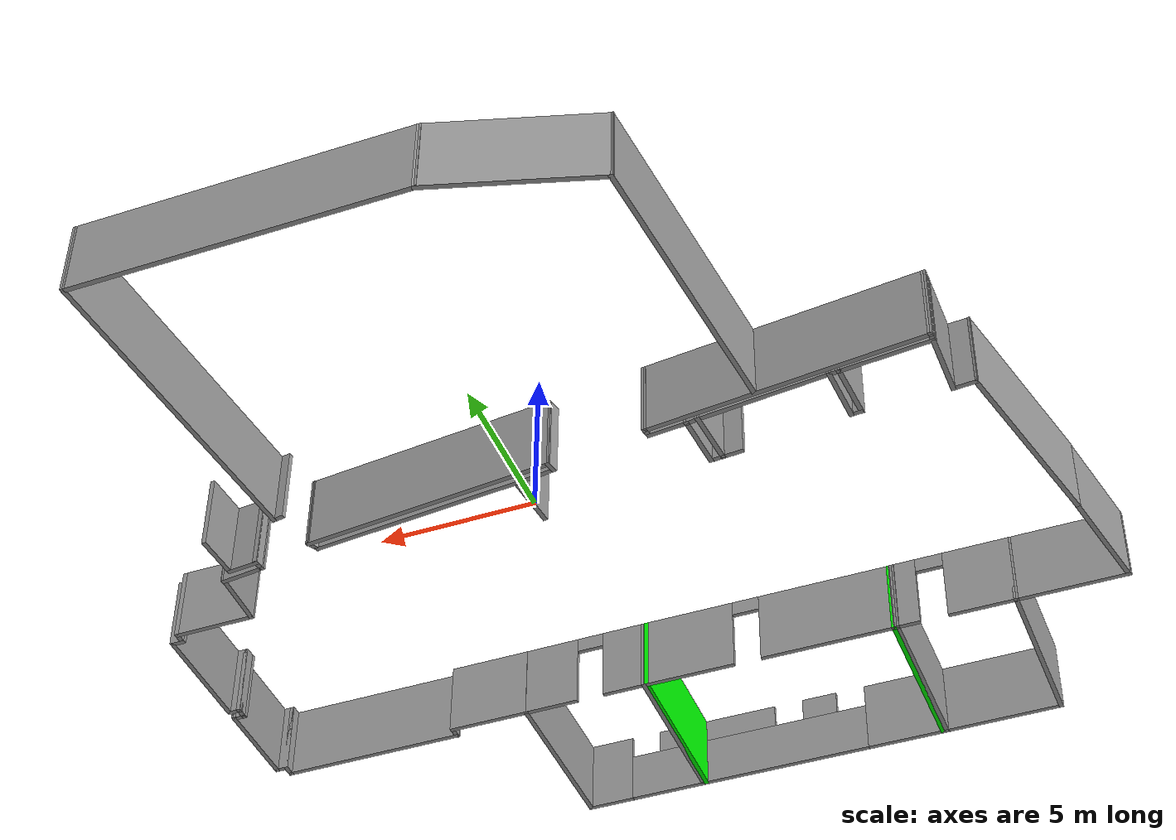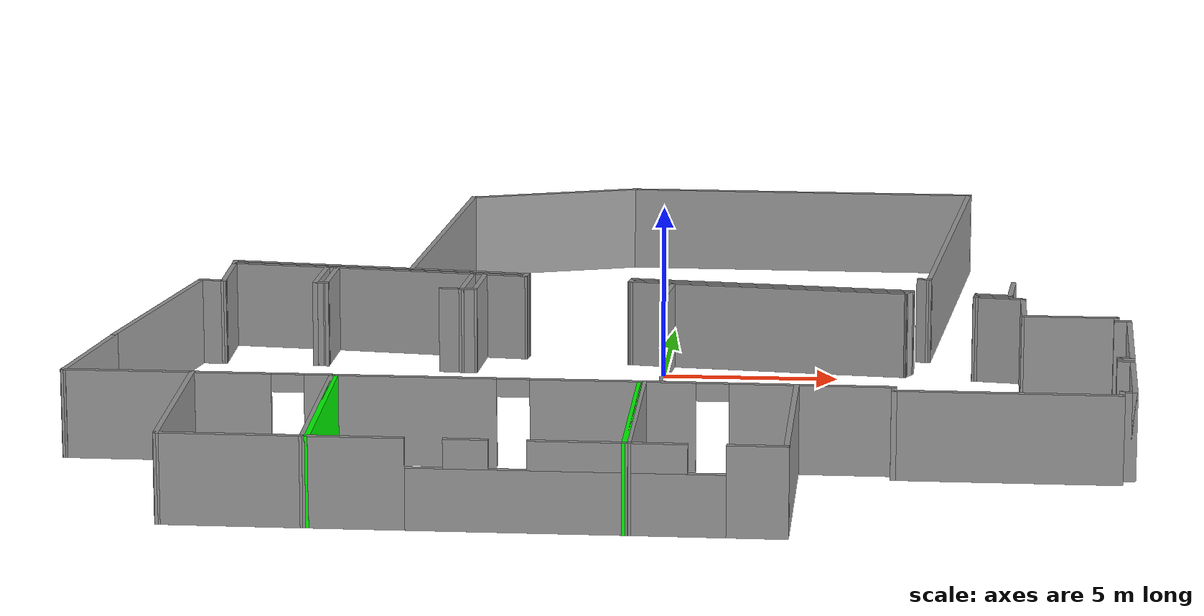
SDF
<?xml version='1.0'?>
<sdf version='1.6'>
  <model name='ucu_basic_frame'>
    <pose frame=''>-1.2423 -1.36367 0 0 -0 0</pose>
    <link name='Wall_171'>
      <collision name='Wall_171_Collision'>
        <geometry>
          <box>
            <size>5.97284 0.15 2.5</size>
          </box>
        </geometry>
        <pose frame=''>0 0 1.25 0 -0 0</pose>
      </collision>
      <visual name='Wall_171_Visual'>
        <pose frame=''>0 0 1.25 0 -0 0</pose>
        <geometry>
          <box>
            <size>5.97284 0.15 2.5</size>
          </box>
        </geometry>
        <material>
          <script>
            <uri>file://media/materials/scripts/gazebo.material</uri>
            <name>Gazebo/Grey</name>
          </script>
          <ambient>1 1 1 1</ambient>
        </material>
        <meta>
          <layer>0</layer>
        </meta>
      </visual>
      <pose frame=''>5.44548 -11.0107 0 0 -0 1.5685</pose>
    </link>
    <link name='Wall_172'>
      <collision name='Wall_172_Collision'>
        <geometry>
          <box>
            <size>2.77695 0.15 2.5</size>
          </box>
        </geometry>
        <pose frame=''>0 0 1.25 0 -0 0</pose>
      </collision>
      <visual name='Wall_172_Visual'>
        <pose frame=''>0 0 1.25 0 -0 0</pose>
        <geometry>
          <box>
            <size>2.77695 0.15 2.5</size>
          </box>
        </geometry>
        <material>
          <script>
            <uri>file://media/materials/scripts/gazebo.material</uri>
            <name>Gazebo/Grey</name>
          </script>
          <ambient>1 1 1 1</ambient>
        </material>
        <meta>
          <layer>0</layer>
        </meta>
      </visual>
      <pose frame=''>6.76546 -8.09988 0 0 0 -0.000444</pose>
    </link>
    <link name='Wall_175'>
      <collision name='Wall_175_Collision'>
        <geometry>
          <box>
            <size>0.5 0.15 2.5</size>
          </box>
        </geometry>
        <pose frame=''>0 0 1.25 0 -0 0</pose>
      </collision>
      <visual name='Wall_175_Visual'>
        <pose frame=''>0 0 1.25 0 -0 0</pose>
        <geometry>
          <box>
            <size>0.5 0.15 2.5</size>
          </box>
        </geometry>
        <material>
          <script>
            <uri>file://media/materials/scripts/gazebo.material</uri>
            <name>Gazebo/Grey</name>
          </script>
          <ambient>1 1 1 1</ambient>
        </material>
        <meta>
          <layer>0</layer>
        </meta>
      </visual>
      <pose frame=''>8.08184 -8.28385 0 0 0 -1.55318</pose>
    </link>
    <link name='Wall_181'>
      <pose frame=''>3.39042 -8.08948 0 0 -0 3.13683</pose>
      <visual name='Wall_181_Visual_0'>
        <pose frame=''>-1.19379 0 1.25 0 -0 0</pose>
        <geometry>
          <box>
            <size>1.8861 0.15 2.5</size>
          </box>
        </geometry>
        <material>
          <script>
            <uri>file://media/materials/scripts/gazebo.material</uri>
            <name>Gazebo/Grey</name>
          </script>
          <ambient>1 1 1 1</ambient>
        </material>
        <meta>
          <layer>0</layer>
        </meta>
      </visual>
      <collision name='Wall_181_Collision_0'>
        <geometry>
          <box>
            <size>1.8861 0.15 2.5</size>
          </box>
        </geometry>
        <pose frame=''>-1.19379 0 1.25 0 -0 0</pose>
      </collision>
      <visual name='Wall_181_Visual_1'>
        <pose frame=''>1.39305 0 1.25 0 -0 0</pose>
        <geometry>
          <box>
            <size>1.48758 0.15 2.5</size>
          </box>
        </geometry>
        <material>
          <script>
            <uri>file://media/materials/scripts/gazebo.material</uri>
            <name>Gazebo/Grey</name>
          </script>
          <ambient>1 1 1 1</ambient>
        </material>
        <meta>
          <layer>0</layer>
        </meta>
      </visual>
      <collision name='Wall_181_Collision_1'>
        <geometry>
          <box>
            <size>1.48758 0.15 2.5</size>
          </box>
        </geometry>
        <pose frame=''>1.39305 0 1.25 0 -0 0</pose>
      </collision>
      <visual name='Wall_181_Visual_2'>
        <pose frame=''>0.19926 0 2.25 0 -0 0</pose>
        <geometry>
          <box>
            <size>0.9 0.15 0.5</size>
          </box>
        </geometry>
        <material>
          <script>
            <uri>file://media/materials/scripts/gazebo.material</uri>
            <name>Gazebo/Grey</name>
          </script>
          <ambient>1 1 1 1</ambient>
        </material>
        <meta>
          <layer>0</layer>
        </meta>
      </visual>
      <collision name='Wall_181_Collision_2'>
        <geometry>
          <box>
            <size>0.9 0.15 0.5</size>
          </box>
        </geometry>
        <pose frame=''>0.19926 0 2.25 0 -0 0</pose>
      </collision>
    </link>
    <link name='Wall_184'>
      <collision name='Wall_184_Collision'>
        <geometry>
          <box>
            <size>5.98199 0.15 2.5</size>
          </box>
        </geometry>
        <pose frame=''>0 0 1.25 0 -0 0</pose>
      </collision>
      <visual name='Wall_184_Visual'>
        <pose frame=''>0 0 1.25 0 -0 0</pose>
        <geometry>
          <box>
            <size>5.98199 0.15 2.5</size>
          </box>
        </geometry>
        <material>
          <script>
            <uri>file://media/materials/scripts/gazebo.material</uri>
            <name>Gazebo/Grey</name>
          </script>
          <ambient>1 1 1 1</ambient>
        </material>
        <meta>
          <layer>0</layer>
        </meta>
      </visual>
      <pose frame=''>1.33252 -10.9956 0 0 0 -1.56948</pose>
    </link>
    <link name='Wall_185'>
      <collision name='Wall_185_Collision'>
        <geometry>
          <box>
            <size>0.249504 0.15 2.5</size>
          </box>
        </geometry>
        <pose frame=''>0 0 1.25 0 -0 0</pose>
      </collision>
      <visual name='Wall_185_Visual'>
        <pose frame=''>0 0 1.25 0 -0 0</pose>
        <geometry>
          <box>
            <size>0.249504 0.15 2.5</size>
          </box>
        </geometry>
        <material>
          <script>
            <uri>file://media/materials/scripts/gazebo.material</uri>
            <name>Gazebo/Grey</name>
          </script>
          <ambient>1 1 1 1</ambient>
        </material>
        <meta>
          <layer>0</layer>
        </meta>
      </visual>
      <pose frame=''>1.28661 -13.9114 0 0 -0 3.13667</pose>
    </link>
    <link name='Wall_186'>
      <collision name='Wall_186_Collision'>
        <geometry>
          <box>
            <size>5.98236 0.15 2.5</size>
          </box>
        </geometry>
        <pose frame=''>0 0 1.25 0 -0 0</pose>
      </collision>
      <visual name='Wall_186_Visual'>
        <pose frame=''>0 0 1.25 0 -0 0</pose>
        <geometry>
          <box>
            <size>5.98236 0.15 2.5</size>
          </box>
        </geometry>
        <material>
          <script>
            <uri>file://media/materials/scripts/gazebo.material</uri>
            <name>Gazebo/Grey</name>
          </script>
          <ambient>0 1 0 1</ambient>
        </material>
        <meta>
          <layer>0</layer>
        </meta>
      </visual>
      <pose frame=''>1.23028 -10.9951 0 0 -0 1.57305</pose>
    </link>
    <link name='Wall_187'>
      <pose frame=''>-2.91004 -8.08571 0 0 0 -3.14</pose>
      <visual name='Wall_187_Visual_0'>
        <pose frame=''>-2.67697 0 1.25 0 -0 0</pose>
        <geometry>
          <box>
            <size>3.06354 0.15 2.5</size>
          </box>
        </geometry>
        <material>
          <script>
            <uri>file://media/materials/scripts/gazebo.material</uri>
            <name>Gazebo/Grey</name>
          </script>
          <ambient>1 1 1 1</ambient>
        </material>
        <meta>
          <layer>0</layer>
        </meta>
      </visual>
      <collision name='Wall_187_Collision_0'>
        <geometry>
          <box>
            <size>3.06354 0.15 2.5</size>
          </box>
        </geometry>
        <pose frame=''>-2.67697 0 1.25 0 -0 0</pose>
      </collision>
      <visual name='Wall_187_Visual_1'>
        <pose frame=''>1.98177 0 1.25 0 -0 0</pose>
        <geometry>
          <box>
            <size>4.45394 0.15 2.5</size>
          </box>
        </geometry>
        <material>
          <script>
            <uri>file://media/materials/scripts/gazebo.material</uri>
            <name>Gazebo/Grey</name>
          </script>
          <ambient>1 1 1 1</ambient>
        </material>
        <meta>
          <layer>0</layer>
        </meta>
      </visual>
      <collision name='Wall_187_Collision_1'>
        <geometry>
          <box>
            <size>4.45394 0.15 2.5</size>
          </box>
        </geometry>
        <pose frame=''>1.98177 0 1.25 0 -0 0</pose>
      </collision>
      <visual name='Wall_187_Visual_2'>
        <pose frame=''>-0.695201 0 2.25 0 -0 0</pose>
        <geometry>
          <box>
            <size>0.9 0.15 0.5</size>
          </box>
        </geometry>
        <material>
          <script>
            <uri>file://media/materials/scripts/gazebo.material</uri>
            <name>Gazebo/Grey</name>
          </script>
          <ambient>1 1 1 1</ambient>
        </material>
        <meta>
          <layer>0</layer>
        </meta>
      </visual>
      <collision name='Wall_187_Collision_2'>
        <geometry>
          <box>
            <size>0.9 0.15 0.5</size>
          </box>
        </geometry>
        <pose frame=''>-0.695201 0 2.25 0 -0 0</pose>
      </collision>
    </link>
    <link name='Wall_188'>
      <collision name='Wall_188_Collision'>
        <geometry>
          <box>
            <size>5.98201 0.15 2.5</size>
          </box>
        </geometry>
        <pose frame=''>0 0 1.25 0 -0 0</pose>
      </collision>
      <visual name='Wall_188_Visual'>
        <pose frame=''>0 0 1.25 0 -0 0</pose>
        <geometry>
          <box>
            <size>5.98201 0.15 2.5</size>
          </box>
        </geometry>
        <material>
          <script>
            <uri>file://media/materials/scripts/gazebo.material</uri>
            <name>Gazebo/Grey</name>
          </script>
          <ambient>0 1 0 1</ambient>
        </material>
        <meta>
          <layer>0</layer>
        </meta>
      </visual>
      <pose frame=''>-7.05036 -11.0083 0 0 0 -1.56854</pose>
    </link>
    <link name='Wall_189'>
      <pose frame=''>-2.90346 -13.9177 0 0 -0 0.00159</pose>
      <visual name='Wall_189_Visual_0'>
        <pose frame=''>-2.9043 0 1.25 0 -0 0</pose>
        <geometry>
          <box>
            <size>2.62204 0.15 2.5</size>
          </box>
        </geometry>
        <material>
          <script>
            <uri>file://media/materials/scripts/gazebo.material</uri>
            <name>Gazebo/Grey</name>
          </script>
          <ambient>1 1 1 1</ambient>
        </material>
        <meta>
          <layer>0</layer>
        </meta>
      </visual>
      <collision name='Wall_189_Collision_0'>
        <geometry>
          <box>
            <size>2.62204 0.15 2.5</size>
          </box>
        </geometry>
        <pose frame=''>-2.9043 0 1.25 0 -0 0</pose>
      </collision>
      <visual name='Wall_189_Visual_1'>
        <pose frame=''>1.31102 0 0.85 0 -0 0</pose>
        <geometry>
          <box>
            <size>5.8086 0.15 1.7</size>
          </box>
        </geometry>
        <material>
          <script>
            <uri>file://media/materials/scripts/gazebo.material</uri>
            <name>Gazebo/Grey</name>
          </script>
          <ambient>1 1 1 1</ambient>
        </material>
        <meta>
          <layer>0</layer>
        </meta>
      </visual>
      <collision name='Wall_189_Collision_1'>
        <geometry>
          <box>
            <size>5.8086 0.15 1.7</size>
          </box>
        </geometry>
        <pose frame=''>1.31102 0 0.85 0 -0 0</pose>
      </collision>
      <visual name='Wall_189_Visual_2'>
        <pose frame=''>0.003473 0 2.1 0 -0 0</pose>
        <geometry>
          <box>
            <size>1.19351 0.15 0.8</size>
          </box>
        </geometry>
        <material>
          <script>
            <uri>file://media/materials/scripts/gazebo.material</uri>
            <name>Gazebo/Grey</name>
          </script>
          <ambient>1 1 1 1</ambient>
        </material>
        <meta>
          <layer>0</layer>
        </meta>
      </visual>
      <collision name='Wall_189_Collision_2'>
        <geometry>
          <box>
            <size>1.19351 0.15 0.8</size>
          </box>
        </geometry>
        <pose frame=''>0.003473 0 2.1 0 -0 0</pose>
      </collision>
      <visual name='Wall_189_Visual_3'>
        <pose frame=''>2.90777 0 2.1 0 -0 0</pose>
        <geometry>
          <box>
            <size>2.6151 0.15 0.8</size>
          </box>
        </geometry>
        <material>
          <script>
            <uri>file://media/materials/scripts/gazebo.material</uri>
            <name>Gazebo/Grey</name>
          </script>
          <ambient>1 1 1 1</ambient>
        </material>
        <meta>
          <layer>0</layer>
        </meta>
      </visual>
      <collision name='Wall_189_Collision_3'>
        <geometry>
          <box>
            <size>2.6151 0.15 0.8</size>
          </box>
        </geometry>
        <pose frame=''>2.90777 0 2.1 0 -0 0</pose>
      </collision>
    </link>
    <link name='Wall_191'>
      <pose frame=''>3.38758 -13.9169 0 0 -0 3.13903</pose>
      <visual name='Wall_191_Visual_0'>
        <pose frame=''>-1.31182 0 1.25 0 -0 0</pose>
        <geometry>
          <box>
            <size>1.62881 0.15 2.5</size>
          </box>
        </geometry>
        <material>
          <script>
            <uri>file://media/materials/scripts/gazebo.material</uri>
            <name>Gazebo/Grey</name>
          </script>
          <ambient>1 1 1 1</ambient>
        </material>
        <meta>
          <layer>0</layer>
        </meta>
      </visual>
      <collision name='Wall_191_Collision_0'>
        <geometry>
          <box>
            <size>1.62881 0.15 2.5</size>
          </box>
        </geometry>
        <pose frame=''>-1.31182 0 1.25 0 -0 0</pose>
      </collision>
      <visual name='Wall_191_Visual_1'>
        <pose frame=''>0.814404 0 0.85 0 -0 0</pose>
        <geometry>
          <box>
            <size>2.62364 0.15 1.7</size>
          </box>
        </geometry>
        <material>
          <script>
            <uri>file://media/materials/scripts/gazebo.material</uri>
            <name>Gazebo/Grey</name>
          </script>
          <ambient>1 1 1 1</ambient>
        </material>
        <meta>
          <layer>0</layer>
        </meta>
      </visual>
      <collision name='Wall_191_Collision_1'>
        <geometry>
          <box>
            <size>2.62364 0.15 1.7</size>
          </box>
        </geometry>
        <pose frame=''>0.814404 0 0.85 0 -0 0</pose>
      </collision>
      <visual name='Wall_191_Visual_2'>
        <pose frame=''>1.3144 0 2.1 0 -0 0</pose>
        <geometry>
          <box>
            <size>1.62365 0.15 0.8</size>
          </box>
        </geometry>
        <material>
          <script>
            <uri>file://media/materials/scripts/gazebo.material</uri>
            <name>Gazebo/Grey</name>
          </script>
          <ambient>1 1 1 1</ambient>
        </material>
        <meta>
          <layer>0</layer>
        </meta>
      </visual>
      <collision name='Wall_191_Collision_2'>
        <geometry>
          <box>
            <size>1.62365 0.15 0.8</size>
          </box>
        </geometry>
        <pose frame=''>1.3144 0 2.1 0 -0 0</pose>
      </collision>
    </link>
    <link name='Wall_200'>
      <collision name='Wall_200_Collision'>
        <geometry>
          <box>
            <size>0.256138 0.15 2.5</size>
          </box>
        </geometry>
        <pose frame=''>0 0 1.25 0 -0 0</pose>
      </collision>
      <visual name='Wall_200_Visual'>
        <pose frame=''>0 0 1.25 0 -0 0</pose>
        <geometry>
          <box>
            <size>0.256138 0.15 2.5</size>
          </box>
        </geometry>
        <material>
          <script>
            <uri>file://media/materials/scripts/gazebo.material</uri>
            <name>Gazebo/Grey</name>
          </script>
          <ambient>1 1 1 1</ambient>
        </material>
        <meta>
          <layer>0</layer>
        </meta>
      </visual>
      <pose frame=''>-7.1096 -8.08571 0 0 -0 3.01724</pose>
    </link>
    <link name='Wall_201'>
      <collision name='Wall_201_Collision'>
        <geometry>
          <box>
            <size>5.99517 0.15 2.5</size>
          </box>
        </geometry>
        <pose frame=''>0 0 1.25 0 -0 0</pose>
      </collision>
      <visual name='Wall_201_Visual'>
        <pose frame=''>0 0 1.25 0 -0 0</pose>
        <geometry>
          <box>
            <size>5.99517 0.15 2.5</size>
          </box>
        </geometry>
        <material>
          <script>
            <uri>file://media/materials/scripts/gazebo.material</uri>
            <name>Gazebo/Grey</name>
          </script>
          <ambient>1 1 1 1</ambient>
        </material>
        <meta>
          <layer>0</layer>
        </meta>
      </visual>
      <pose frame=''>-7.16884 -11.0017 0 0 0 -1.57305</pose>
    </link>
    <link name='Wall_202'>
      <collision name='Wall_202_Collision'>
        <geometry>
          <box>
            <size>3.98095 0.15 2.5</size>
          </box>
        </geometry>
        <pose frame=''>0 0 1.25 0 -0 0</pose>
      </collision>
      <visual name='Wall_202_Visual'>
        <pose frame=''>0 0 1.25 0 -0 0</pose>
        <geometry>
          <box>
            <size>3.98095 0.15 2.5</size>
          </box>
        </geometry>
        <material>
          <script>
            <uri>file://media/materials/scripts/gazebo.material</uri>
            <name>Gazebo/Grey</name>
          </script>
          <ambient>1 1 1 1</ambient>
        </material>
        <meta>
          <layer>0</layer>
        </meta>
      </visual>
      <pose frame=''>-9.0909 -13.9177 0 0 -0 3.13816</pose>
    </link>
    <link name='Wall_203'>
      <collision name='Wall_203_Collision'>
        <geometry>
          <box>
            <size>5.98199 0.15 2.5</size>
          </box>
        </geometry>
        <pose frame=''>0 0 1.25 0 -0 0</pose>
      </collision>
      <visual name='Wall_203_Visual'>
        <pose frame=''>0 0 1.25 0 -0 0</pose>
        <geometry>
          <box>
            <size>5.98199 0.15 2.5</size>
          </box>
        </geometry>
        <material>
          <script>
            <uri>file://media/materials/scripts/gazebo.material</uri>
            <name>Gazebo/Grey</name>
          </script>
          <ambient>1 1 1 1</ambient>
        </material>
        <meta>
          <layer>0</layer>
        </meta>
      </visual>
      <pose frame=''>-11.0064 -10.9951 0 0 -0 1.56628</pose>
    </link>
    <link name='Wall_204'>
      <pose frame=''>-9.07773 -8.07913 0 0 -0 0</pose>
      <visual name='Wall_204_Visual_0'>
        <pose frame=''>-0.86786 0 1.25 0 -0 0</pose>
        <geometry>
          <box>
            <size>2.24559 0.15 2.5</size>
          </box>
        </geometry>
        <material>
          <script>
            <uri>file://media/materials/scripts/gazebo.material</uri>
            <name>Gazebo/Grey</name>
          </script>
          <ambient>1 1 1 1</ambient>
        </material>
        <meta>
          <layer>0</layer>
        </meta>
      </visual>
      <collision name='Wall_204_Collision_0'>
        <geometry>
          <box>
            <size>2.24559 0.15 2.5</size>
          </box>
        </geometry>
        <pose frame=''>-0.86786 0 1.25 0 -0 0</pose>
      </collision>
      <visual name='Wall_204_Visual_1'>
        <pose frame=''>1.57279 0 1.25 0 -0 0</pose>
        <geometry>
          <box>
            <size>0.835719 0.15 2.5</size>
          </box>
        </geometry>
        <material>
          <script>
            <uri>file://media/materials/scripts/gazebo.material</uri>
            <name>Gazebo/Grey</name>
          </script>
          <ambient>1 1 1 1</ambient>
        </material>
        <meta>
          <layer>0</layer>
        </meta>
      </visual>
      <collision name='Wall_204_Collision_1'>
        <geometry>
          <box>
            <size>0.835719 0.15 2.5</size>
          </box>
        </geometry>
        <pose frame=''>1.57279 0 1.25 0 -0 0</pose>
      </collision>
      <visual name='Wall_204_Visual_2'>
        <pose frame=''>0.704935 0 2.25 0 -0 0</pose>
        <geometry>
          <box>
            <size>0.9 0.15 0.5</size>
          </box>
        </geometry>
        <material>
          <script>
            <uri>file://media/materials/scripts/gazebo.material</uri>
            <name>Gazebo/Grey</name>
          </script>
          <ambient>1 1 1 1</ambient>
        </material>
        <meta>
          <layer>0</layer>
        </meta>
      </visual>
      <collision name='Wall_204_Collision_2'>
        <geometry>
          <box>
            <size>0.9 0.15 0.5</size>
          </box>
        </geometry>
        <pose frame=''>0.704935 0 2.25 0 -0 0</pose>
      </collision>
    </link>
    <link name='Wall_211'>
      <collision name='Wall_211_Collision'>
        <geometry>
          <box>
            <size>3.67855 0.15 2.5</size>
          </box>
        </geometry>
        <pose frame=''>0 0 1.25 0 -0 0</pose>
      </collision>
      <visual name='Wall_211_Visual'>
        <pose frame=''>0 0 1.25 0 -0 0</pose>
        <geometry>
          <box>
            <size>3.67855 0.15 2.5</size>
          </box>
        </geometry>
        <material>
          <script>
            <uri>file://media/materials/scripts/gazebo.material</uri>
            <name>Gazebo/Grey</name>
          </script>
          <ambient>1 1 1 1</ambient>
        </material>
        <meta>
          <layer>0</layer>
        </meta>
      </visual>
      <pose frame=''>-12.7573 -8.07913 0 0 -0 3.14159</pose>
    </link>
    <link name='Wall_215'>
      <collision name='Wall_215_Collision'>
        <geometry>
          <box>
            <size>3.88211 0.15 2.5</size>
          </box>
        </geometry>
        <pose frame=''>0 0 1.25 0 -0 0</pose>
      </collision>
      <visual name='Wall_215_Visual'>
        <pose frame=''>0 0 1.25 0 -0 0</pose>
        <geometry>
          <box>
            <size>3.88211 0.15 2.5</size>
          </box>
        </geometry>
        <material>
          <script>
            <uri>file://media/materials/scripts/gazebo.material</uri>
            <name>Gazebo/Grey</name>
          </script>
          <ambient>1 1 1 1</ambient>
        </material>
        <meta>
          <layer>0</layer>
        </meta>
      </visual>
      <pose frame=''>-14.1457 -6.25128 0 0 -0 1.36809</pose>
    </link>
    <link name='Wall_216'>
      <collision name='Wall_216_Collision'>
        <geometry>
          <box>
            <size>6.46944 0.15 2.5</size>
          </box>
        </geometry>
        <pose frame=''>0 0 1.25 0 -0 0</pose>
      </collision>
      <visual name='Wall_216_Visual'>
        <pose frame=''>0 0 1.25 0 -0 0</pose>
        <geometry>
          <box>
            <size>6.46944 0.15 2.5</size>
          </box>
        </geometry>
        <material>
          <script>
            <uri>file://media/materials/scripts/gazebo.material</uri>
            <name>Gazebo/Grey</name>
          </script>
          <ambient>1 1 1 1</ambient>
        </material>
        <meta>
          <layer>0</layer>
        </meta>
      </visual>
      <pose frame=''>-13.0355 -1.31077 0 0 -0 1.3362</pose>
    </link>
    <link name='Wall_219'>
      <collision name='Wall_219_Collision'>
        <geometry>
          <box>
            <size>0.822603 0.15 2.5</size>
          </box>
        </geometry>
        <pose frame=''>0 0 1.25 0 -0 0</pose>
      </collision>
      <visual name='Wall_219_Visual'>
        <pose frame=''>0 0 1.25 0 -0 0</pose>
        <geometry>
          <box>
            <size>0.822603 0.15 2.5</size>
          </box>
        </geometry>
        <material>
          <script>
            <uri>file://media/materials/scripts/gazebo.material</uri>
            <name>Gazebo/Grey</name>
          </script>
          <ambient>1 1 1 1</ambient>
        </material>
        <meta>
          <layer>0</layer>
        </meta>
      </visual>
      <pose frame=''>-11.9656 1.73894 0 0 0 -0.069823</pose>
    </link>
    <link name='Wall_235'>
      <collision name='Wall_235_Collision'>
        <geometry>
          <box>
            <size>0.419456 0.15 2.5</size>
          </box>
        </geometry>
        <pose frame=''>0 0 1.25 0 -0 0</pose>
      </collision>
      <visual name='Wall_235_Visual'>
        <pose frame=''>0 0 1.25 0 -0 0</pose>
        <geometry>
          <box>
            <size>0.419456 0.15 2.5</size>
          </box>
        </geometry>
        <material>
          <script>
            <uri>file://media/materials/scripts/gazebo.material</uri>
            <name>Gazebo/Grey</name>
          </script>
          <ambient>1 1 1 1</ambient>
        </material>
        <meta>
          <layer>0</layer>
        </meta>
      </visual>
      <pose frame=''>-8.66541 3.50535 0 0 0 -0.094238</pose>
    </link>
    <link name='Wall_236'>
      <collision name='Wall_236_Collision'>
        <geometry>
          <box>
            <size>4.22679 0.15 2.5</size>
          </box>
        </geometry>
        <pose frame=''>0 0 1.25 0 -0 0</pose>
      </collision>
      <visual name='Wall_236_Visual'>
        <pose frame=''>0 0 1.25 0 -0 0</pose>
        <geometry>
          <box>
            <size>4.22679 0.15 2.5</size>
          </box>
        </geometry>
        <material>
          <script>
            <uri>file://media/materials/scripts/gazebo.material</uri>
            <name>Gazebo/Grey</name>
          </script>
          <ambient>1 1 1 1</ambient>
        </material>
        <meta>
          <layer>0</layer>
        </meta>
      </visual>
      <pose frame=''>-6.50341 3.28586 0 0 0 -0.101636</pose>
    </link>
    <link name='Wall_238'>
      <collision name='Wall_238_Collision'>
        <geometry>
          <box>
            <size>2.97493 0.15 2.5</size>
          </box>
        </geometry>
        <pose frame=''>0 0 1.25 0 -0 0</pose>
      </collision>
      <visual name='Wall_238_Visual'>
        <pose frame=''>0 0 1.25 0 -0 0</pose>
        <geometry>
          <box>
            <size>2.97493 0.15 2.5</size>
          </box>
        </geometry>
        <material>
          <script>
            <uri>file://media/materials/scripts/gazebo.material</uri>
            <name>Gazebo/Grey</name>
          </script>
          <ambient>1 1 1 1</ambient>
        </material>
        <meta>
          <layer>0</layer>
        </meta>
      </visual>
      <pose frame=''>-10.2067 3.64028 0 0 -0 3.05493</pose>
    </link>
    <link name='Wall_240'>
      <collision name='Wall_240_Collision'>
        <geometry>
          <box>
            <size>1.94303 0.15 2.5</size>
          </box>
        </geometry>
        <pose frame=''>0 0 1.25 0 -0 0</pose>
      </collision>
      <visual name='Wall_240_Visual'>
        <pose frame=''>0 0 1.25 0 -0 0</pose>
        <geometry>
          <box>
            <size>1.94303 0.15 2.5</size>
          </box>
        </geometry>
        <material>
          <script>
            <uri>file://media/materials/scripts/gazebo.material</uri>
            <name>Gazebo/Grey</name>
          </script>
          <ambient>1 1 1 1</ambient>
        </material>
        <meta>
          <layer>0</layer>
        </meta>
      </visual>
      <pose frame=''>-8.88603 2.62353 0 0 0 -1.63778</pose>
    </link>
    <link name='Wall_242'>
      <collision name='Wall_242_Collision'>
        <geometry>
          <box>
            <size>1.93473 0.15 2.5</size>
          </box>
        </geometry>
        <pose frame=''>0 0 1.25 0 -0 0</pose>
      </collision>
      <visual name='Wall_242_Visual'>
        <pose frame=''>0 0 1.25 0 -0 0</pose>
        <geometry>
          <box>
            <size>1.93473 0.15 2.5</size>
          </box>
        </geometry>
        <material>
          <script>
            <uri>file://media/materials/scripts/gazebo.material</uri>
            <name>Gazebo/Grey</name>
          </script>
          <ambient>1 1 1 1</ambient>
        </material>
        <meta>
          <layer>0</layer>
        </meta>
      </visual>
      <pose frame=''>-8.58067 2.60137 0 0 0 -1.62614</pose>
    </link>
    <link name='Wall_243'>
      <collision name='Wall_243_Collision'>
        <geometry>
          <box>
            <size>0.440136 0.15 2.5</size>
          </box>
        </geometry>
        <pose frame=''>0 0 1.25 0 -0 0</pose>
      </collision>
      <visual name='Wall_243_Visual'>
        <pose frame=''>0 0 1.25 0 -0 0</pose>
        <geometry>
          <box>
            <size>0.440136 0.15 2.5</size>
          </box>
        </geometry>
        <material>
          <script>
            <uri>file://media/materials/scripts/gazebo.material</uri>
            <name>Gazebo/Grey</name>
          </script>
          <ambient>1 1 1 1</ambient>
        </material>
        <meta>
          <layer>0</layer>
        </meta>
      </visual>
      <pose frame=''>-8.77481 1.71955 0 0 -0 3.07623</pose>
    </link>
    <link name='Wall_246'>
      <collision name='Wall_246_Collision'>
        <geometry>
          <box>
            <size>0.509875 0.15 2.5</size>
          </box>
        </geometry>
        <pose frame=''>0 0 1.25 0 -0 0</pose>
      </collision>
      <visual name='Wall_246_Visual'>
        <pose frame=''>0 0 1.25 0 -0 0</pose>
        <geometry>
          <box>
            <size>0.509875 0.15 2.5</size>
          </box>
        </geometry>
        <material>
          <script>
            <uri>file://media/materials/scripts/gazebo.material</uri>
            <name>Gazebo/Grey</name>
          </script>
          <ambient>1 1 1 1</ambient>
        </material>
        <meta>
          <layer>0</layer>
        </meta>
      </visual>
      <pose frame=''>-4.29722 3.05489 0 0 0 -0.134585</pose>
    </link>
    <link name='Wall_247'>
      <collision name='Wall_247_Collision'>
        <geometry>
          <box>
            <size>1.33921 0.15 2.5</size>
          </box>
        </geometry>
        <pose frame=''>0 0 1.25 0 -0 0</pose>
      </collision>
      <visual name='Wall_247_Visual'>
        <pose frame=''>0 0 1.25 0 -0 0</pose>
        <geometry>
          <box>
            <size>1.33921 0.15 2.5</size>
          </box>
        </geometry>
        <material>
          <script>
            <uri>file://media/materials/scripts/gazebo.material</uri>
            <name>Gazebo/Grey</name>
          </script>
          <ambient>1 1 1 1</ambient>
        </material>
        <meta>
          <layer>0</layer>
        </meta>
      </visual>
      <pose frame=''>-3.52661 2.97846 0 0 0 -0.088046</pose>
    </link>
    <link name='Wall_248'>
      <collision name='Wall_248_Collision'>
        <geometry>
          <box>
            <size>0.397585 0.15 2.5</size>
          </box>
        </geometry>
        <pose frame=''>0 0 1.25 0 -0 0</pose>
      </collision>
      <visual name='Wall_248_Visual'>
        <pose frame=''>0 0 1.25 0 -0 0</pose>
        <geometry>
          <box>
            <size>0.397585 0.15 2.5</size>
          </box>
        </geometry>
        <material>
          <script>
            <uri>file://media/materials/scripts/gazebo.material</uri>
            <name>Gazebo/Grey</name>
          </script>
          <ambient>1 1 1 1</ambient>
        </material>
        <meta>
          <layer>0</layer>
        </meta>
      </visual>
      <pose frame=''>-2.91396 3.04829 0 0 -0 1.40565</pose>
    </link>
    <link name='Wall_250'>
      <collision name='Wall_250_Collision'>
        <geometry>
          <box>
            <size>1.91251 0.15 2.5</size>
          </box>
        </geometry>
        <pose frame=''>0 0 1.25 0 -0 0</pose>
      </collision>
      <visual name='Wall_250_Visual'>
        <pose frame=''>0 0 1.25 0 -0 0</pose>
        <geometry>
          <box>
            <size>1.91251 0.15 2.5</size>
          </box>
        </geometry>
        <material>
          <script>
            <uri>file://media/materials/scripts/gazebo.material</uri>
            <name>Gazebo/Grey</name>
          </script>
          <ambient>1 1 1 1</ambient>
        </material>
        <meta>
          <layer>0</layer>
        </meta>
      </visual>
      <pose frame=''>-4.55256 2.20116 0 0 0 -1.65832</pose>
    </link>
    <link name='Wall_251'>
      <collision name='Wall_251_Collision'>
        <geometry>
          <box>
            <size>0.528652 0.15 2.5</size>
          </box>
        </geometry>
        <pose frame=''>0 0 1.25 0 -0 0</pose>
      </collision>
      <visual name='Wall_251_Visual'>
        <pose frame=''>0 0 1.25 0 -0 0</pose>
        <geometry>
          <box>
            <size>0.528652 0.15 2.5</size>
          </box>
        </geometry>
        <material>
          <script>
            <uri>file://media/materials/scripts/gazebo.material</uri>
            <name>Gazebo/Grey</name>
          </script>
          <ambient>1 1 1 1</ambient>
        </material>
        <meta>
          <layer>0</layer>
        </meta>
      </visual>
      <pose frame=''>-4.44062 1.31279 0 0 0 -0.055434</pose>
    </link>
    <link name='Wall_252'>
      <collision name='Wall_252_Collision'>
        <geometry>
          <box>
            <size>1.88354 0.15 2.5</size>
          </box>
        </geometry>
        <pose frame=''>0 0 1.25 0 -0 0</pose>
      </collision>
      <visual name='Wall_252_Visual'>
        <pose frame=''>0 0 1.25 0 -0 0</pose>
        <geometry>
          <box>
            <size>1.88354 0.15 2.5</size>
          </box>
        </geometry>
        <material>
          <script>
            <uri>file://media/materials/scripts/gazebo.material</uri>
            <name>Gazebo/Grey</name>
          </script>
          <ambient>1 1 1 1</ambient>
        </material>
        <meta>
          <layer>0</layer>
        </meta>
      </visual>
      <pose frame=''>-4.18528 2.16653 0 0 -0 1.49415</pose>
    </link>
    <link name='Wall_254'>
      <collision name='Wall_254_Collision'>
        <geometry>
          <box>
            <size>0.732308 0.15 2.5</size>
          </box>
        </geometry>
        <pose frame=''>0 0 1.25 0 -0 0</pose>
      </collision>
      <visual name='Wall_254_Visual'>
        <pose frame=''>0 0 1.25 0 -0 0</pose>
        <geometry>
          <box>
            <size>0.732308 0.15 2.5</size>
          </box>
        </geometry>
        <material>
          <script>
            <uri>file://media/materials/scripts/gazebo.material</uri>
            <name>Gazebo/Grey</name>
          </script>
          <ambient>1 1 1 1</ambient>
        </material>
        <meta>
          <layer>0</layer>
        </meta>
      </visual>
      <pose frame=''>-4.91992 1.34515 0 0 -0 3.06638</pose>
    </link>
    <link name='Wall_260'>
      <collision name='Wall_260_Collision'>
        <geometry>
          <box>
            <size>8.91013 0.15 2.5</size>
          </box>
        </geometry>
        <pose frame=''>0 0 1.25 0 -0 0</pose>
      </collision>
      <visual name='Wall_260_Visual'>
        <pose frame=''>0 0 1.25 0 -0 0</pose>
        <geometry>
          <box>
            <size>8.91013 0.15 2.5</size>
          </box>
        </geometry>
        <material>
          <script>
            <uri>file://media/materials/scripts/gazebo.material</uri>
            <name>Gazebo/Grey</name>
          </script>
          <ambient>1 1 1 1</ambient>
        </material>
        <meta>
          <layer>0</layer>
        </meta>
      </visual>
      <pose frame=''>-7.25327 3.59269 0 0 -0 3.04503</pose>
    </link>
    <link name='Wall_264'>
      <collision name='Wall_264_Collision'>
        <geometry>
          <box>
            <size>0.445131 0.15 2.5</size>
          </box>
        </geometry>
        <pose frame=''>0 0 1.25 0 -0 0</pose>
      </collision>
      <visual name='Wall_264_Visual'>
        <pose frame=''>0 0 1.25 0 -0 0</pose>
        <geometry>
          <box>
            <size>0.445131 0.15 2.5</size>
          </box>
        </geometry>
        <material>
          <script>
            <uri>file://media/materials/scripts/gazebo.material</uri>
            <name>Gazebo/Grey</name>
          </script>
          <ambient>1 1 1 1</ambient>
        </material>
        <meta>
          <layer>0</layer>
        </meta>
      </visual>
      <pose frame=''>0.222214 2.68141 0 0 0 -1.79253</pose>
    </link>
    <link name='Wall_265'>
      <collision name='Wall_265_Collision'>
        <geometry>
          <box>
            <size>1.38367 0.15 2.5</size>
          </box>
        </geometry>
        <pose frame=''>0 0 1.25 0 -0 0</pose>
      </collision>
      <visual name='Wall_265_Visual'>
        <pose frame=''>0 0 1.25 0 -0 0</pose>
        <geometry>
          <box>
            <size>1.38367 0.15 2.5</size>
          </box>
        </geometry>
        <material>
          <script>
            <uri>file://media/materials/scripts/gazebo.material</uri>
            <name>Gazebo/Grey</name>
          </script>
          <ambient>1 1 1 1</ambient>
        </material>
        <meta>
          <layer>0</layer>
        </meta>
      </visual>
      <pose frame=''>0.817825 2.46551 0 0 0 -0.1169</pose>
    </link>
    <link name='Wall_267'>
      <collision name='Wall_267_Collision'>
        <geometry>
          <box>
            <size>8.27695 0.15 2.5</size>
          </box>
        </geometry>
        <pose frame=''>0 0 1.25 0 -0 0</pose>
      </collision>
      <visual name='Wall_267_Visual'>
        <pose frame=''>0 0 1.25 0 -0 0</pose>
        <geometry>
          <box>
            <size>8.27695 0.15 2.5</size>
          </box>
        </geometry>
        <material>
          <script>
            <uri>file://media/materials/scripts/gazebo.material</uri>
            <name>Gazebo/Grey</name>
          </script>
          <ambient>1 1 1 1</ambient>
        </material>
        <meta>
          <layer>0</layer>
        </meta>
      </visual>
      <pose frame=''>4.30052 2.44738 0 0 0 -0.093156</pose>
    </link>
    <link name='Wall_268'>
      <collision name='Wall_268_Collision'>
        <geometry>
          <box>
            <size>0.488919 0.15 2.5</size>
          </box>
        </geometry>
        <pose frame=''>0 0 1.25 0 -0 0</pose>
      </collision>
      <visual name='Wall_268_Visual'>
        <pose frame=''>0 0 1.25 0 -0 0</pose>
        <geometry>
          <box>
            <size>0.488919 0.15 2.5</size>
          </box>
        </geometry>
        <material>
          <script>
            <uri>file://media/materials/scripts/gazebo.material</uri>
            <name>Gazebo/Grey</name>
          </script>
          <ambient>1 1 1 1</ambient>
        </material>
        <meta>
          <layer>0</layer>
        </meta>
      </visual>
      <pose frame=''>8.26147 1.92273 0 0 0 -2.09559</pose>
    </link>
    <link name='Wall_269'>
      <collision name='Wall_269_Collision'>
        <geometry>
          <box>
            <size>6.92432 0.15 2.5</size>
          </box>
        </geometry>
        <pose frame=''>0 0 1.25 0 -0 0</pose>
      </collision>
      <visual name='Wall_269_Visual'>
        <pose frame=''>0 0 1.25 0 -0 0</pose>
        <geometry>
          <box>
            <size>6.92432 0.15 2.5</size>
          </box>
        </geometry>
        <material>
          <script>
            <uri>file://media/materials/scripts/gazebo.material</uri>
            <name>Gazebo/Grey</name>
          </script>
          <ambient>1 1 1 1</ambient>
        </material>
        <meta>
          <layer>0</layer>
        </meta>
      </visual>
      <pose frame=''>4.80351 2.08482 0 0 -0 3.05031</pose>
    </link>
    <link name='Wall_272'>
      <collision name='Wall_272_Collision'>
        <geometry>
          <box>
            <size>1.91958 0.15 2.5</size>
          </box>
        </geometry>
        <pose frame=''>0 0 1.25 0 -0 0</pose>
      </collision>
      <visual name='Wall_272_Visual'>
        <pose frame=''>0 0 1.25 0 -0 0</pose>
        <geometry>
          <box>
            <size>1.91958 0.15 2.5</size>
          </box>
        </geometry>
        <material>
          <script>
            <uri>file://media/materials/scripts/gazebo.material</uri>
            <name>Gazebo/Grey</name>
          </script>
          <ambient>1 1 1 1</ambient>
        </material>
        <meta>
          <layer>0</layer>
        </meta>
      </visual>
      <pose frame=''>1.33783 1.51364 0 0 0 -1.67567</pose>
    </link>
    <link name='Wall_276'>
      <collision name='Wall_276_Collision'>
        <geometry>
          <box>
            <size>6.25 0.15 2.5</size>
          </box>
        </geometry>
        <pose frame=''>0 0 1.25 0 -0 0</pose>
      </collision>
      <visual name='Wall_276_Visual'>
        <pose frame=''>0 0 1.25 0 -0 0</pose>
        <geometry>
          <box>
            <size>6.25 0.15 2.5</size>
          </box>
        </geometry>
        <material>
          <script>
            <uri>file://media/materials/scripts/gazebo.material</uri>
            <name>Gazebo/Grey</name>
          </script>
          <ambient>1 1 1 1</ambient>
        </material>
        <meta>
          <layer>0</layer>
        </meta>
      </visual>
      <pose frame=''>11.1349 -8.45041 0 0 -0 0</pose>
    </link>
    <link name='Wall_293'>
      <collision name='Wall_293_Collision'>
        <geometry>
          <box>
            <size>0.5 0.15 2.5</size>
          </box>
        </geometry>
        <pose frame=''>0 0 1.25 0 -0 0</pose>
      </collision>
      <visual name='Wall_293_Visual'>
        <pose frame=''>0 0 1.25 0 -0 0</pose>
        <geometry>
          <box>
            <size>0.5 0.15 2.5</size>
          </box>
        </geometry>
        <material>
          <script>
            <uri>file://media/materials/scripts/gazebo.material</uri>
            <name>Gazebo/Grey</name>
          </script>
          <ambient>1 1 1 1</ambient>
        </material>
        <meta>
          <layer>0</layer>
        </meta>
      </visual>
      <pose frame=''>14.1849 -8.27541 0 0 -0 1.5708</pose>
    </link>
    <link name='Wall_294'>
      <collision name='Wall_294_Collision'>
        <geometry>
          <box>
            <size>0.5 0.15 2.5</size>
          </box>
        </geometry>
        <pose frame=''>0 0 1.25 0 -0 0</pose>
      </collision>
      <visual name='Wall_294_Visual'>
        <pose frame=''>0 0 1.25 0 -0 0</pose>
        <geometry>
          <box>
            <size>0.5 0.15 2.5</size>
          </box>
        </geometry>
        <material>
          <script>
            <uri>file://media/materials/scripts/gazebo.material</uri>
            <name>Gazebo/Grey</name>
          </script>
          <ambient>1 1 1 1</ambient>
        </material>
        <meta>
          <layer>0</layer>
        </meta>
      </visual>
      <pose frame=''>14.3599 -8.10041 0 0 -0 0</pose>
    </link>
    <link name='Wall_296'>
      <collision name='Wall_296_Collision'>
        <geometry>
          <box>
            <size>3.25 0.15 2.5</size>
          </box>
        </geometry>
        <pose frame=''>0 0 1.25 0 -0 0</pose>
      </collision>
      <visual name='Wall_296_Visual'>
        <pose frame=''>0 0 1.25 0 -0 0</pose>
        <geometry>
          <box>
            <size>3.25 0.15 2.5</size>
          </box>
        </geometry>
        <material>
          <script>
            <uri>file://media/materials/scripts/gazebo.material</uri>
            <name>Gazebo/Grey</name>
          </script>
          <ambient>1 1 1 1</ambient>
        </material>
        <meta>
          <layer>0</layer>
        </meta>
      </visual>
      <pose frame=''>14.5349 -6.55041 0 0 -0 1.5708</pose>
    </link>
    <link name='Wall_297'>
      <collision name='Wall_297_Collision'>
        <geometry>
          <box>
            <size>0.5 0.15 2.5</size>
          </box>
        </geometry>
        <pose frame=''>0 0 1.25 0 -0 0</pose>
      </collision>
      <visual name='Wall_297_Visual'>
        <pose frame=''>0 0 1.25 0 -0 0</pose>
        <geometry>
          <box>
            <size>0.5 0.15 2.5</size>
          </box>
        </geometry>
        <material>
          <script>
            <uri>file://media/materials/scripts/gazebo.material</uri>
            <name>Gazebo/Grey</name>
          </script>
          <ambient>1 1 1 1</ambient>
        </material>
        <meta>
          <layer>0</layer>
        </meta>
      </visual>
      <pose frame=''>14.3599 -5.00041 0 0 -0 3.14159</pose>
    </link>
    <link name='Wall_298'>
      <collision name='Wall_298_Collision'>
        <geometry>
          <box>
            <size>0.5 0.15 2.5</size>
          </box>
        </geometry>
        <pose frame=''>0 0 1.25 0 -0 0</pose>
      </collision>
      <visual name='Wall_298_Visual'>
        <pose frame=''>0 0 1.25 0 -0 0</pose>
        <geometry>
          <box>
            <size>0.5 0.15 2.5</size>
          </box>
        </geometry>
        <material>
          <script>
            <uri>file://media/materials/scripts/gazebo.material</uri>
            <name>Gazebo/Grey</name>
          </script>
          <ambient>1 1 1 1</ambient>
        </material>
        <meta>
          <layer>0</layer>
        </meta>
      </visual>
      <pose frame=''>14.1849 -4.82541 0 0 -0 1.5708</pose>
    </link>
    <link name='Wall_299'>
      <collision name='Wall_299_Collision'>
        <geometry>
          <box>
            <size>0.5 0.15 2.5</size>
          </box>
        </geometry>
        <pose frame=''>0 0 1.25 0 -0 0</pose>
      </collision>
      <visual name='Wall_299_Visual'>
        <pose frame=''>0 0 1.25 0 -0 0</pose>
        <geometry>
          <box>
            <size>0.5 0.15 2.5</size>
          </box>
        </geometry>
        <material>
          <script>
            <uri>file://media/materials/scripts/gazebo.material</uri>
            <name>Gazebo/Grey</name>
          </script>
          <ambient>1 1 1 1</ambient>
        </material>
        <meta>
          <layer>0</layer>
        </meta>
      </visual>
      <pose frame=''>14.3599 -4.65041 0 0 -0 0</pose>
    </link>
    <link name='Wall_302'>
      <collision name='Wall_302_Collision'>
        <geometry>
          <box>
            <size>4 0.15 2.5</size>
          </box>
        </geometry>
        <pose frame=''>0 0 1.25 0 -0 0</pose>
      </collision>
      <visual name='Wall_302_Visual'>
        <pose frame=''>0 0 1.25 0 -0 0</pose>
        <geometry>
          <box>
            <size>4 0.15 2.5</size>
          </box>
        </geometry>
        <material>
          <script>
            <uri>file://media/materials/scripts/gazebo.material</uri>
            <name>Gazebo/Grey</name>
          </script>
          <ambient>1 1 1 1</ambient>
        </material>
        <meta>
          <layer>0</layer>
        </meta>
      </visual>
      <pose frame=''>14.5349 -2.72541 0 0 -0 1.5708</pose>
    </link>
    <link name='Wall_303'>
      <collision name='Wall_303_Collision'>
        <geometry>
          <box>
            <size>0.5 0.15 2.5</size>
          </box>
        </geometry>
        <pose frame=''>0 0 1.25 0 -0 0</pose>
      </collision>
      <visual name='Wall_303_Visual'>
        <pose frame=''>0 0 1.25 0 -0 0</pose>
        <geometry>
          <box>
            <size>0.5 0.15 2.5</size>
          </box>
        </geometry>
        <material>
          <script>
            <uri>file://media/materials/scripts/gazebo.material</uri>
            <name>Gazebo/Grey</name>
          </script>
          <ambient>1 1 1 1</ambient>
        </material>
        <meta>
          <layer>0</layer>
        </meta>
      </visual>
      <pose frame=''>14.3599 -0.800407 0 0 -0 3.14159</pose>
    </link>
    <link name='Wall_305'>
      <collision name='Wall_305_Collision'>
        <geometry>
          <box>
            <size>0.5 0.15 2.5</size>
          </box>
        </geometry>
        <pose frame=''>0 0 1.25 0 -0 0</pose>
      </collision>
      <visual name='Wall_305_Visual'>
        <pose frame=''>0 0 1.25 0 -0 0</pose>
        <geometry>
          <box>
            <size>0.5 0.15 2.5</size>
          </box>
        </geometry>
        <material>
          <script>
            <uri>file://media/materials/scripts/gazebo.material</uri>
            <name>Gazebo/Grey</name>
          </script>
          <ambient>1 1 1 1</ambient>
        </material>
        <meta>
          <layer>0</layer>
        </meta>
      </visual>
      <pose frame=''>14.1849 -0.625407 0 0 -0 1.5708</pose>
    </link>
    <link name='Wall_306'>
      <collision name='Wall_306_Collision'>
        <geometry>
          <box>
            <size>2.75 0.15 2.5</size>
          </box>
        </geometry>
        <pose frame=''>0 0 1.25 0 -0 0</pose>
      </collision>
      <visual name='Wall_306_Visual'>
        <pose frame=''>0 0 1.25 0 -0 0</pose>
        <geometry>
          <box>
            <size>2.75 0.15 2.5</size>
          </box>
        </geometry>
        <material>
          <script>
            <uri>file://media/materials/scripts/gazebo.material</uri>
            <name>Gazebo/Grey</name>
          </script>
          <ambient>1 1 1 1</ambient>
        </material>
        <meta>
          <layer>0</layer>
        </meta>
      </visual>
      <pose frame=''>12.8849 -0.450407 0 0 -0 3.14159</pose>
    </link>
    <link name='Wall_308'>
      <collision name='Wall_308_Collision'>
        <geometry>
          <box>
            <size>2.00031 0.15 2.5</size>
          </box>
        </geometry>
        <pose frame=''>0 0 1.25 0 -0 0</pose>
      </collision>
      <visual name='Wall_308_Visual'>
        <pose frame=''>0 0 1.25 0 -0 0</pose>
        <geometry>
          <box>
            <size>2.00031 0.15 2.5</size>
          </box>
        </geometry>
        <material>
          <script>
            <uri>file://media/materials/scripts/gazebo.material</uri>
            <name>Gazebo/Grey</name>
          </script>
          <ambient>1 1 1 1</ambient>
        </material>
        <meta>
          <layer>0</layer>
        </meta>
      </visual>
      <pose frame=''>11.5681 0.474593 0 0 -0 1.589</pose>
    </link>
    <link name='Wall_309'>
      <collision name='Wall_309_Collision'>
        <geometry>
          <box>
            <size>1.52674 0.15 2.5</size>
          </box>
        </geometry>
        <pose frame=''>0 0 1.25 0 -0 0</pose>
      </collision>
      <visual name='Wall_309_Visual'>
        <pose frame=''>0 0 1.25 0 -0 0</pose>
        <geometry>
          <box>
            <size>1.52674 0.15 2.5</size>
          </box>
        </geometry>
        <material>
          <script>
            <uri>file://media/materials/scripts/gazebo.material</uri>
            <name>Gazebo/Grey</name>
          </script>
          <ambient>1 1 1 1</ambient>
        </material>
        <meta>
          <layer>0</layer>
        </meta>
      </visual>
      <pose frame=''>10.8836 1.47565 0 0 -0 3.03093</pose>
    </link>
    <link name='Wall_310'>
      <collision name='Wall_310_Collision'>
        <geometry>
          <box>
            <size>0.465001 0.15 2.5</size>
          </box>
        </geometry>
        <pose frame=''>0 0 1.25 0 -0 0</pose>
      </collision>
      <visual name='Wall_310_Visual'>
        <pose frame=''>0 0 1.25 0 -0 0</pose>
        <geometry>
          <box>
            <size>0.465001 0.15 2.5</size>
          </box>
        </geometry>
        <material>
          <script>
            <uri>file://media/materials/scripts/gazebo.material</uri>
            <name>Gazebo/Grey</name>
          </script>
          <ambient>1 1 1 1</ambient>
        </material>
        <meta>
          <layer>0</layer>
        </meta>
      </visual>
      <pose frame=''>10.2225 1.70746 0 0 -0 1.42134</pose>
    </link>
    <link name='Wall_311'>
      <collision name='Wall_311_Collision'>
        <geometry>
          <box>
            <size>1.0913 0.15 2.5</size>
          </box>
        </geometry>
        <pose frame=''>0 0 1.25 0 -0 0</pose>
      </collision>
      <visual name='Wall_311_Visual'>
        <pose frame=''>0 0 1.25 0 -0 0</pose>
        <geometry>
          <box>
            <size>1.0913 0.15 2.5</size>
          </box>
        </geometry>
        <material>
          <script>
            <uri>file://media/materials/scripts/gazebo.material</uri>
            <name>Gazebo/Grey</name>
          </script>
          <ambient>1 1 1 1</ambient>
        </material>
        <meta>
          <layer>0</layer>
        </meta>
      </visual>
      <pose frame=''>10.7146 1.80243 0 0 0 -0.093477</pose>
    </link>
    <link name='Wall_313'>
      <collision name='Wall_313_Collision'>
        <geometry>
          <box>
            <size>1.56155 0.15 2.5</size>
          </box>
        </geometry>
        <pose frame=''>0 0 1.25 0 -0 0</pose>
      </collision>
      <visual name='Wall_313_Visual'>
        <pose frame=''>0 0 1.25 0 -0 0</pose>
        <geometry>
          <box>
            <size>1.56155 0.15 2.5</size>
          </box>
        </geometry>
        <material>
          <script>
            <uri>file://media/materials/scripts/gazebo.material</uri>
            <name>Gazebo/Grey</name>
          </script>
          <ambient>1 1 1 1</ambient>
        </material>
        <meta>
          <layer>0</layer>
        </meta>
      </visual>
      <pose frame=''>11.2333 2.47933 0 0 -0 1.49967</pose>
    </link>
    <link name='Wall_317'>
      <collision name='Wall_317_Collision'>
        <geometry>
          <box>
            <size>9.08373 0.15 2.5</size>
          </box>
        </geometry>
        <pose frame=''>0 0 1.25 0 -0 0</pose>
      </collision>
      <visual name='Wall_317_Visual'>
        <pose frame=''>0 0 1.25 0 -0 0</pose>
        <geometry>
          <box>
            <size>9.08373 0.15 2.5</size>
          </box>
        </geometry>
        <material>
          <script>
            <uri>file://media/materials/scripts/gazebo.material</uri>
            <name>Gazebo/Grey</name>
          </script>
          <ambient>1 1 1 1</ambient>
        </material>
        <meta>
          <layer>0</layer>
        </meta>
      </visual>
      <pose frame=''>-5.88136 8.00561 0 0 0 -1.6704</pose>
    </link>
    <link name='Wall_319'>
      <collision name='Wall_319_Collision'>
        <geometry>
          <box>
            <size>5.27832 0.15 2.5</size>
          </box>
        </geometry>
        <pose frame=''>0 0 1.25 0 -0 0</pose>
      </collision>
      <visual name='Wall_319_Visual'>
        <pose frame=''>0 0 1.25 0 -0 0</pose>
        <geometry>
          <box>
            <size>5.27832 0.15 2.5</size>
          </box>
        </geometry>
        <material>
          <script>
            <uri>file://media/materials/scripts/gazebo.material</uri>
            <name>Gazebo/Grey</name>
          </script>
          <ambient>1 1 1 1</ambient>
        </material>
        <meta>
          <layer>0</layer>
        </meta>
      </visual>
      <pose frame=''>-2.97852 13.1783 0 0 -0 0.287873</pose>
    </link>
    <link name='Wall_320'>
      <collision name='Wall_320_Collision'>
        <geometry>
          <box>
            <size>10.5597 0.15 2.5</size>
          </box>
        </geometry>
        <pose frame=''>0 0 1.25 0 -0 0</pose>
      </collision>
      <visual name='Wall_320_Visual'>
        <pose frame=''>0 0 1.25 0 -0 0</pose>
        <geometry>
          <box>
            <size>10.5597 0.15 2.5</size>
          </box>
        </geometry>
        <material>
          <script>
            <uri>file://media/materials/scripts/gazebo.material</uri>
            <name>Gazebo/Grey</name>
          </script>
          <ambient>1 1 1 1</ambient>
        </material>
        <meta>
          <layer>0</layer>
        </meta>
      </visual>
      <pose frame=''>4.68498 13.9093 0 0 -0 0.000568</pose>
    </link>
    <link name='Wall_323'>
      <collision name='Wall_323_Collision'>
        <geometry>
          <box>
            <size>0.432266 0.15 2.5</size>
          </box>
        </geometry>
        <pose frame=''>0 0 1.25 0 -0 0</pose>
      </collision>
      <visual name='Wall_323_Visual'>
        <pose frame=''>0 0 1.25 0 -0 0</pose>
        <geometry>
          <box>
            <size>0.432266 0.15 2.5</size>
          </box>
        </geometry>
        <material>
          <script>
            <uri>file://media/materials/scripts/gazebo.material</uri>
            <name>Gazebo/Grey</name>
          </script>
          <ambient>1 1 1 1</ambient>
        </material>
        <meta>
          <layer>0</layer>
        </meta>
      </visual>
      <pose frame=''>8.69612 3.45178 0 0 0 -0.166846</pose>
    </link>
    <link name='Wall_326'>
      <collision name='Wall_326_Collision'>
        <geometry>
          <box>
            <size>10.6868 0.15 2.5</size>
          </box>
        </geometry>
        <pose frame=''>0 0 1.25 0 -0 0</pose>
      </collision>
      <visual name='Wall_326_Visual'>
        <pose frame=''>0 0 1.25 0 -0 0</pose>
        <geometry>
          <box>
            <size>10.6868 0.15 2.5</size>
          </box>
        </geometry>
        <material>
          <script>
            <uri>file://media/materials/scripts/gazebo.material</uri>
            <name>Gazebo/Grey</name>
          </script>
          <ambient>1 1 1 1</ambient>
        </material>
        <meta>
          <layer>0</layer>
        </meta>
      </visual>
      <pose frame=''>9.36257 8.67029 0 0 0 -1.67105</pose>
    </link>
    <link name='Wall_328'>
      <collision name='Wall_328_Collision'>
        <geometry>
          <box>
            <size>2.19711 0.15 2.5</size>
          </box>
        </geometry>
        <pose frame=''>0 0 1.25 0 -0 0</pose>
      </collision>
      <visual name='Wall_328_Visual'>
        <pose frame=''>0 0 1.25 0 -0 0</pose>
        <geometry>
          <box>
            <size>2.19711 0.15 2.5</size>
          </box>
        </geometry>
        <material>
          <script>
            <uri>file://media/materials/scripts/gazebo.material</uri>
            <name>Gazebo/Grey</name>
          </script>
          <ambient>1 1 1 1</ambient>
        </material>
        <meta>
          <layer>0</layer>
        </meta>
      </visual>
      <pose frame=''>-11.622 2.739 0 0 -0 1.56287</pose>
    </link>
    <link name='Wall_329'>
      <collision name='Wall_329_Collision'>
        <geometry>
          <box>
            <size>0.402461 0.15 2.5</size>
          </box>
        </geometry>
        <pose frame=''>0 0 1.25 0 -0 0</pose>
      </collision>
      <visual name='Wall_329_Visual'>
        <pose frame=''>0 0 1.25 0 -0 0</pose>
        <geometry>
          <box>
            <size>0.402461 0.15 2.5</size>
          </box>
        </geometry>
        <material>
          <script>
            <uri>file://media/materials/scripts/gazebo.material</uri>
            <name>Gazebo/Grey</name>
          </script>
          <ambient>1 1 1 1</ambient>
        </material>
        <meta>
          <layer>0</layer>
        </meta>
      </visual>
      <pose frame=''>-11.6134 3.88876 0 0 -0 1.56703</pose>
    </link>
    <static>1</static>
  </model>
</sdf>
